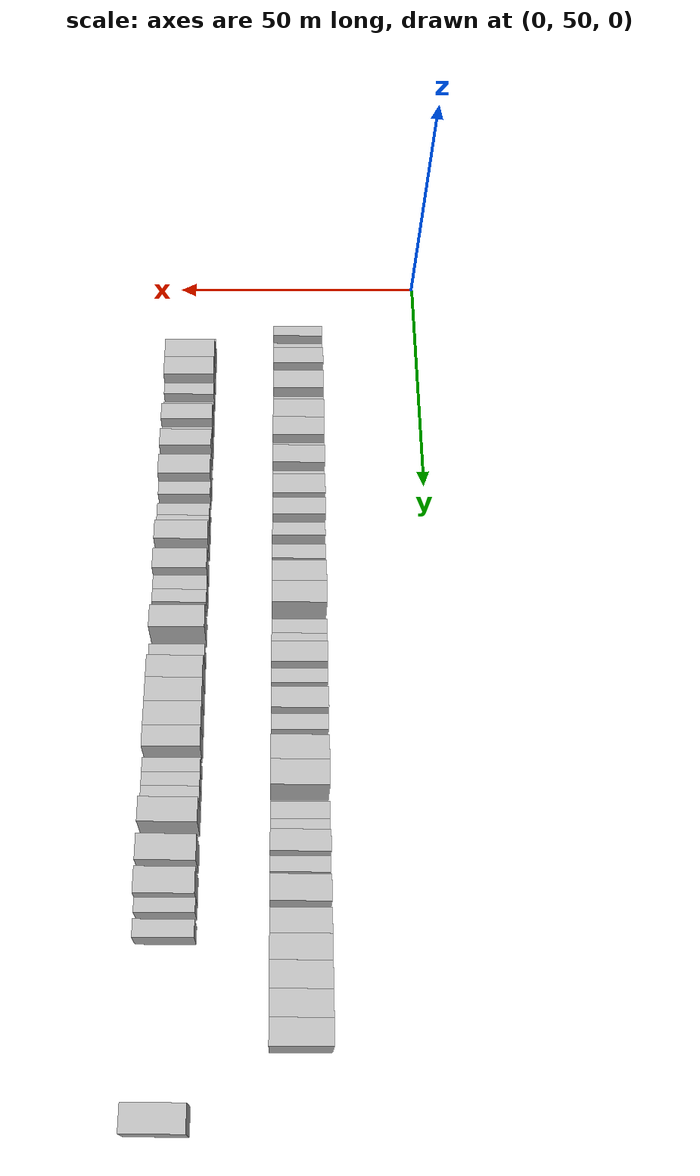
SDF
<sdf version="1.6">
 <world name="default">
  <model name="building_66">
   <static>1</static>
   <pose>25.0000 66.0421 0 0.000000 0.000000 0.000000</pose>
   <link name="link">
    <pose>0 0 3.00 0 0 0</pose>
    <collision name="collision"><geometry><box><size>10.0000 2.4468 6.0000</size></box></geometry></collision>
    <visual name="visual">
     <cast_shadows>0</cast_shadows>
     <geometry><box><size>10.0000 2.4468 6.0000</size></box></geometry>
     <material>
      <script>
       <uri>model://HANNAS_wall/materials/scripts</uri>
       <uri>model://HANNAS_wall/materials/textures</uri>
       <name>vrc/HANNAS_wall</name>
      </script>
     </material>
    </visual>
   </link>
  </model>
  <model name="building_67">
   <static>1</static>
   <pose>25.0000 70.4713 0 0.000000 0.000000 0.000000</pose>
   <link name="link">
    <pose>0 0 3.00 0 0 0</pose>
    <collision name="collision"><geometry><box><size>10.0000 2.4115 6.0000</size></box></geometry></collision>
    <visual name="visual">
     <cast_shadows>0</cast_shadows>
     <geometry><box><size>10.0000 2.4115 6.0000</size></box></geometry>
     <material>
      <script>
       <uri>model://HANNAS_wall/materials/scripts</uri>
       <uri>model://HANNAS_wall/materials/textures</uri>
       <name>vrc/HANNAS_wall</name>
      </script>
     </material>
    </visual>
   </link>
  </model>
  <model name="building_68">
   <static>1</static>
   <pose>25.0000 74.5765 0 0.000000 0.000000 0.000000</pose>
   <link name="link">
    <pose>0 0 4.50 0 0 0</pose>
    <collision name="collision"><geometry><box><size>10.0000 3.7988 9.0000</size></box></geometry></collision>
    <visual name="visual">
     <cast_shadows>0</cast_shadows>
     <geometry><box><size>10.0000 3.7988 9.0000</size></box></geometry>
     <material>
      <script>
       <uri>model://HANNAS_wall/materials/scripts</uri>
       <uri>model://HANNAS_wall/materials/textures</uri>
       <name>vrc/HANNAS_wall</name>
      </script>
     </material>
    </visual>
   </link>
  </model>
  <model name="building_69">
   <static>1</static>
   <pose>25.0000 80.6186 0 0.000000 0.000000 0.000000</pose>
   <link name="link">
    <pose>0 0 4.50 0 0 0</pose>
    <collision name="collision"><geometry><box><size>10.0000 4.2855 9.0000</size></box></geometry></collision>
    <visual name="visual">
     <cast_shadows>0</cast_shadows>
     <geometry><box><size>10.0000 4.2855 9.0000</size></box></geometry>
     <material>
      <script>
       <uri>model://HANNAS_wall/materials/scripts</uri>
       <uri>model://HANNAS_wall/materials/textures</uri>
       <name>vrc/HANNAS_wall</name>
      </script>
     </material>
    </visual>
   </link>
  </model>
  <model name="building_70">
   <static>1</static>
   <pose>25.0000 84.1155 0 0.000000 0.000000 0.000000</pose>
   <link name="link">
    <pose>0 0 3.00 0 0 0</pose>
    <collision name="collision"><geometry><box><size>10.0000 2.7082 6.0000</size></box></geometry></collision>
    <visual name="visual">
     <cast_shadows>0</cast_shadows>
     <geometry><box><size>10.0000 2.7082 6.0000</size></box></geometry>
     <material>
      <script>
       <uri>model://HANNAS_wall/materials/scripts</uri>
       <uri>model://HANNAS_wall/materials/textures</uri>
       <name>vrc/HANNAS_wall</name>
      </script>
     </material>
    </visual>
   </link>
  </model>
  <model name="building_71">
   <static>1</static>
   <pose>25.0000 87.6182 0 0.000000 0.000000 0.000000</pose>
   <link name="link">
    <pose>0 0 4.50 0 0 0</pose>
    <collision name="collision"><geometry><box><size>10.0000 4.2970 9.0000</size></box></geometry></collision>
    <visual name="visual">
     <cast_shadows>0</cast_shadows>
     <geometry><box><size>10.0000 4.2970 9.0000</size></box></geometry>
     <material>
      <script>
       <uri>model://HANNAS_wall/materials/scripts</uri>
       <uri>model://HANNAS_wall/materials/textures</uri>
       <name>vrc/HANNAS_wall</name>
      </script>
     </material>
    </visual>
   </link>
  </model>
  <model name="building_72">
   <static>1</static>
   <pose>25.0000 91.8586 0 0.000000 0.000000 0.000000</pose>
   <link name="link">
    <pose>0 0 4.50 0 0 0</pose>
    <collision name="collision"><geometry><box><size>10.0000 4.1838 9.0000</size></box></geometry></collision>
    <visual name="visual">
     <cast_shadows>0</cast_shadows>
     <geometry><box><size>10.0000 4.1838 9.0000</size></box></geometry>
     <material>
      <script>
       <uri>model://HANNAS_wall/materials/scripts</uri>
       <uri>model://HANNAS_wall/materials/textures</uri>
       <name>vrc/HANNAS_wall</name>
      </script>
     </material>
    </visual>
   </link>
  </model>
  <model name="building_73">
   <static>1</static>
   <pose>25.0000 95.1588 0 0.000000 0.000000 0.000000</pose>
   <link name="link">
    <pose>0 0 3.00 0 0 0</pose>
    <collision name="collision"><geometry><box><size>10.0000 2.4167 6.0000</size></box></geometry></collision>
    <visual name="visual">
     <cast_shadows>0</cast_shadows>
     <geometry><box><size>10.0000 2.4167 6.0000</size></box></geometry>
     <material>
      <script>
       <uri>model://HANNAS_wall/materials/scripts</uri>
       <uri>model://HANNAS_wall/materials/textures</uri>
       <name>vrc/HANNAS_wall</name>
      </script>
     </material>
    </visual>
   </link>
  </model>
  <model name="building_74">
   <static>1</static>
   <pose>25.0000 98.3634 0 0.000000 0.000000 0.000000</pose>
   <link name="link">
    <pose>0 0 4.50 0 0 0</pose>
    <collision name="collision"><geometry><box><size>10.0000 3.9925 9.0000</size></box></geometry></collision>
    <visual name="visual">
     <cast_shadows>0</cast_shadows>
     <geometry><box><size>10.0000 3.9925 9.0000</size></box></geometry>
     <material>
      <script>
       <uri>model://HANNAS_wall/materials/scripts</uri>
       <uri>model://HANNAS_wall/materials/textures</uri>
       <name>vrc/HANNAS_wall</name>
      </script>
     </material>
    </visual>
   </link>
  </model>
  <model name="building_75">
   <static>1</static>
   <pose>25.0000 101.7082 0 0.000000 0.000000 0.000000</pose>
   <link name="link">
    <pose>0 0 3.00 0 0 0</pose>
    <collision name="collision"><geometry><box><size>10.0000 2.6971 6.0000</size></box></geometry></collision>
    <visual name="visual">
     <cast_shadows>0</cast_shadows>
     <geometry><box><size>10.0000 2.6971 6.0000</size></box></geometry>
     <material>
      <script>
       <uri>model://HANNAS_wall/materials/scripts</uri>
       <uri>model://HANNAS_wall/materials/textures</uri>
       <name>vrc/HANNAS_wall</name>
      </script>
     </material>
    </visual>
   </link>
  </model>
  <model name="building_76">
   <static>1</static>
   <pose>25.0000 105.1471 0 0.000000 0.000000 0.000000</pose>
   <link name="link">
    <pose>0 0 4.50 0 0 0</pose>
    <collision name="collision"><geometry><box><size>10.0000 4.1807 9.0000</size></box></geometry></collision>
    <visual name="visual">
     <cast_shadows>0</cast_shadows>
     <geometry><box><size>10.0000 4.1807 9.0000</size></box></geometry>
     <material>
      <script>
       <uri>model://HANNAS_wall/materials/scripts</uri>
       <uri>model://HANNAS_wall/materials/textures</uri>
       <name>vrc/HANNAS_wall</name>
      </script>
     </material>
    </visual>
   </link>
  </model>
  <model name="building_77">
   <static>1</static>
   <pose>25.0000 110.0863 0 0.000000 0.000000 0.000000</pose>
   <link name="link">
    <pose>0 0 4.50 0 0 0</pose>
    <collision name="collision"><geometry><box><size>10.0000 3.6975 9.0000</size></box></geometry></collision>
    <visual name="visual">
     <cast_shadows>0</cast_shadows>
     <geometry><box><size>10.0000 3.6975 9.0000</size></box></geometry>
     <material>
      <script>
       <uri>model://HANNAS_wall/materials/scripts</uri>
       <uri>model://HANNAS_wall/materials/textures</uri>
       <name>vrc/HANNAS_wall</name>
      </script>
     </material>
    </visual>
   </link>
  </model>
  <model name="building_78">
   <static>1</static>
   <pose>25.0000 113.3490 0 0.000000 0.000000 0.000000</pose>
   <link name="link">
    <pose>0 0 3.00 0 0 0</pose>
    <collision name="collision"><geometry><box><size>10.0000 2.8279 6.0000</size></box></geometry></collision>
    <visual name="visual">
     <cast_shadows>0</cast_shadows>
     <geometry><box><size>10.0000 2.8279 6.0000</size></box></geometry>
     <material>
      <script>
       <uri>model://HANNAS_wall/materials/scripts</uri>
       <uri>model://HANNAS_wall/materials/textures</uri>
       <name>vrc/HANNAS_wall</name>
      </script>
     </material>
    </visual>
   </link>
  </model>
  <model name="building_79">
   <static>1</static>
   <pose>25.0000 118.2401 0 0.000000 0.000000 0.000000</pose>
   <link name="link">
    <pose>0 0 3.00 0 0 0</pose>
    <collision name="collision"><geometry><box><size>10.0000 2.9542 6.0000</size></box></geometry></collision>
    <visual name="visual">
     <cast_shadows>0</cast_shadows>
     <geometry><box><size>10.0000 2.9542 6.0000</size></box></geometry>
     <material>
      <script>
       <uri>model://HANNAS_wall/materials/scripts</uri>
       <uri>model://HANNAS_wall/materials/textures</uri>
       <name>vrc/HANNAS_wall</name>
      </script>
     </material>
    </visual>
   </link>
  </model>
  <model name="building_80">
   <static>1</static>
   <pose>25.0000 123.8369 0 0.000000 0.000000 0.000000</pose>
   <link name="link">
    <pose>0 0 4.50 0 0 0</pose>
    <collision name="collision"><geometry><box><size>10.0000 4.2394 9.0000</size></box></geometry></collision>
    <visual name="visual">
     <cast_shadows>0</cast_shadows>
     <geometry><box><size>10.0000 4.2394 9.0000</size></box></geometry>
     <material>
      <script>
       <uri>model://HANNAS_wall/materials/scripts</uri>
       <uri>model://HANNAS_wall/materials/textures</uri>
       <name>vrc/HANNAS_wall</name>
      </script>
     </material>
    </visual>
   </link>
  </model>
  <model name="building_81">
   <static>1</static>
   <pose>25.0000 128.1379 0 0.000000 0.000000 0.000000</pose>
   <link name="link">
    <pose>0 0 4.50 0 0 0</pose>
    <collision name="collision"><geometry><box><size>10.0000 4.3627 9.0000</size></box></geometry></collision>
    <visual name="visual">
     <cast_shadows>0</cast_shadows>
     <geometry><box><size>10.0000 4.3627 9.0000</size></box></geometry>
     <material>
      <script>
       <uri>model://HANNAS_wall/materials/scripts</uri>
       <uri>model://HANNAS_wall/materials/textures</uri>
       <name>vrc/HANNAS_wall</name>
      </script>
     </material>
    </visual>
   </link>
  </model>
  <model name="building_82">
   <static>1</static>
   <pose>25.0000 133.6990 0 0.000000 0.000000 0.000000</pose>
   <link name="link">
    <pose>0 0 3.00 0 0 0</pose>
    <collision name="collision"><geometry><box><size>10.0000 2.7595 6.0000</size></box></geometry></collision>
    <visual name="visual">
     <cast_shadows>0</cast_shadows>
     <geometry><box><size>10.0000 2.7595 6.0000</size></box></geometry>
     <material>
      <script>
       <uri>model://HANNAS_wall/materials/scripts</uri>
       <uri>model://HANNAS_wall/materials/textures</uri>
       <name>vrc/HANNAS_wall</name>
      </script>
     </material>
    </visual>
   </link>
  </model>
  <model name="building_83">
   <static>1</static>
   <pose>25.0000 136.5353 0 0.000000 0.000000 0.000000</pose>
   <link name="link">
    <pose>0 0 3.00 0 0 0</pose>
    <collision name="collision"><geometry><box><size>10.0000 2.9131 6.0000</size></box></geometry></collision>
    <visual name="visual">
     <cast_shadows>0</cast_shadows>
     <geometry><box><size>10.0000 2.9131 6.0000</size></box></geometry>
     <material>
      <script>
       <uri>model://HANNAS_wall/materials/scripts</uri>
       <uri>model://HANNAS_wall/materials/textures</uri>
       <name>vrc/HANNAS_wall</name>
      </script>
     </material>
    </visual>
   </link>
  </model>
  <model name="building_84">
   <static>1</static>
   <pose>25.0000 139.9664 0 0.000000 0.000000 0.000000</pose>
   <link name="link">
    <pose>0 0 4.50 0 0 0</pose>
    <collision name="collision"><geometry><box><size>10.0000 3.9490 9.0000</size></box></geometry></collision>
    <visual name="visual">
     <cast_shadows>0</cast_shadows>
     <geometry><box><size>10.0000 3.9490 9.0000</size></box></geometry>
     <material>
      <script>
       <uri>model://HANNAS_wall/materials/scripts</uri>
       <uri>model://HANNAS_wall/materials/textures</uri>
       <name>vrc/HANNAS_wall</name>
      </script>
     </material>
    </visual>
   </link>
  </model>
  <model name="building_85">
   <static>1</static>
   <pose>25.0000 143.3175 0 0.000000 0.000000 0.000000</pose>
   <link name="link">
    <pose>0 0 3.00 0 0 0</pose>
    <collision name="collision"><geometry><box><size>10.0000 2.7533 6.0000</size></box></geometry></collision>
    <visual name="visual">
     <cast_shadows>0</cast_shadows>
     <geometry><box><size>10.0000 2.7533 6.0000</size></box></geometry>
     <material>
      <script>
       <uri>model://HANNAS_wall/materials/scripts</uri>
       <uri>model://HANNAS_wall/materials/textures</uri>
       <name>vrc/HANNAS_wall</name>
      </script>
     </material>
    </visual>
   </link>
  </model>
  <model name="building_86">
   <static>1</static>
   <pose>25.0000 148.6133 0 0.000000 0.000000 0.000000</pose>
   <link name="link">
    <pose>0 0 4.50 0 0 0</pose>
    <collision name="collision"><geometry><box><size>10.0000 3.8383 9.0000</size></box></geometry></collision>
    <visual name="visual">
     <cast_shadows>0</cast_shadows>
     <geometry><box><size>10.0000 3.8383 9.0000</size></box></geometry>
     <material>
      <script>
       <uri>model://HANNAS_wall/materials/scripts</uri>
       <uri>model://HANNAS_wall/materials/textures</uri>
       <name>vrc/HANNAS_wall</name>
      </script>
     </material>
    </visual>
   </link>
  </model>
  <model name="building_87">
   <static>1</static>
   <pose>25.0000 151.9871 0 0.000000 0.000000 0.000000</pose>
   <link name="link">
    <pose>0 0 3.00 0 0 0</pose>
    <collision name="collision"><geometry><box><size>10.0000 2.9091 6.0000</size></box></geometry></collision>
    <visual name="visual">
     <cast_shadows>0</cast_shadows>
     <geometry><box><size>10.0000 2.9091 6.0000</size></box></geometry>
     <material>
      <script>
       <uri>model://HANNAS_wall/materials/scripts</uri>
       <uri>model://HANNAS_wall/materials/textures</uri>
       <name>vrc/HANNAS_wall</name>
      </script>
     </material>
    </visual>
   </link>
  </model>
  <model name="building_88">
   <static>1</static>
   <pose>25.0000 157.6048 0 0.000000 0.000000 0.000000</pose>
   <link name="link">
    <pose>0 0 4.50 0 0 0</pose>
    <collision name="collision"><geometry><box><size>10.0000 4.3264 9.0000</size></box></geometry></collision>
    <visual name="visual">
     <cast_shadows>0</cast_shadows>
     <geometry><box><size>10.0000 4.3264 9.0000</size></box></geometry>
     <material>
      <script>
       <uri>model://HANNAS_wall/materials/scripts</uri>
       <uri>model://HANNAS_wall/materials/textures</uri>
       <name>vrc/HANNAS_wall</name>
      </script>
     </material>
    </visual>
   </link>
  </model>
  <model name="building_89">
   <static>1</static>
   <pose>25.0000 162.0022 0 0.000000 0.000000 0.000000</pose>
   <link name="link">
    <pose>0 0 4.50 0 0 0</pose>
    <collision name="collision"><geometry><box><size>10.0000 4.4683 9.0000</size></box></geometry></collision>
    <visual name="visual">
     <cast_shadows>0</cast_shadows>
     <geometry><box><size>10.0000 4.4683 9.0000</size></box></geometry>
     <material>
      <script>
       <uri>model://HANNAS_wall/materials/scripts</uri>
       <uri>model://HANNAS_wall/materials/textures</uri>
       <name>vrc/HANNAS_wall</name>
      </script>
     </material>
    </visual>
   </link>
  </model>
  <model name="building_90">
   <static>1</static>
   <pose>25.0000 167.7228 0 0.000000 0.000000 0.000000</pose>
   <link name="link">
    <pose>0 0 3.00 0 0 0</pose>
    <collision name="collision"><geometry><box><size>10.0000 2.9728 6.0000</size></box></geometry></collision>
    <visual name="visual">
     <cast_shadows>0</cast_shadows>
     <geometry><box><size>10.0000 2.9728 6.0000</size></box></geometry>
     <material>
      <script>
       <uri>model://HANNAS_wall/materials/scripts</uri>
       <uri>model://HANNAS_wall/materials/textures</uri>
       <name>vrc/HANNAS_wall</name>
      </script>
     </material>
    </visual>
   </link>
  </model>
  <model name="building_91">
   <static>1</static>
   <pose>25.0000 170.4842 0 0.000000 0.000000 0.000000</pose>
   <link name="link">
    <pose>0 0 3.00 0 0 0</pose>
    <collision name="collision"><geometry><box><size>10.0000 2.5502 6.0000</size></box></geometry></collision>
    <visual name="visual">
     <cast_shadows>0</cast_shadows>
     <geometry><box><size>10.0000 2.5502 6.0000</size></box></geometry>
     <material>
      <script>
       <uri>model://HANNAS_wall/materials/scripts</uri>
       <uri>model://HANNAS_wall/materials/textures</uri>
       <name>vrc/HANNAS_wall</name>
      </script>
     </material>
    </visual>
   </link>
  </model>
  <model name="building_92">
   <static>1</static>
   <pose>25.0000 173.5657 0 0.000000 0.000000 0.000000</pose>
   <link name="link">
    <pose>0 0 4.50 0 0 0</pose>
    <collision name="collision"><geometry><box><size>10.0000 3.6128 9.0000</size></box></geometry></collision>
    <visual name="visual">
     <cast_shadows>0</cast_shadows>
     <geometry><box><size>10.0000 3.6128 9.0000</size></box></geometry>
     <material>
      <script>
       <uri>model://HANNAS_wall/materials/scripts</uri>
       <uri>model://HANNAS_wall/materials/textures</uri>
       <name>vrc/HANNAS_wall</name>
      </script>
     </material>
    </visual>
   </link>
  </model>
  <model name="building_93">
   <static>1</static>
   <pose>25.0000 176.7097 0 0.000000 0.000000 0.000000</pose>
   <link name="link">
    <pose>0 0 3.00 0 0 0</pose>
    <collision name="collision"><geometry><box><size>10.0000 2.6752 6.0000</size></box></geometry></collision>
    <visual name="visual">
     <cast_shadows>0</cast_shadows>
     <geometry><box><size>10.0000 2.6752 6.0000</size></box></geometry>
     <material>
      <script>
       <uri>model://HANNAS_wall/materials/scripts</uri>
       <uri>model://HANNAS_wall/materials/textures</uri>
       <name>vrc/HANNAS_wall</name>
      </script>
     </material>
    </visual>
   </link>
  </model>
  <model name="building_94">
   <static>1</static>
   <pose>25.0000 181.1969 0 0.000000 0.000000 0.000000</pose>
   <link name="link">
    <pose>0 0 4.50 0 0 0</pose>
    <collision name="collision"><geometry><box><size>10.0000 4.2992 9.0000</size></box></geometry></collision>
    <visual name="visual">
     <cast_shadows>0</cast_shadows>
     <geometry><box><size>10.0000 4.2992 9.0000</size></box></geometry>
     <material>
      <script>
       <uri>model://HANNAS_wall/materials/scripts</uri>
       <uri>model://HANNAS_wall/materials/textures</uri>
       <name>vrc/HANNAS_wall</name>
      </script>
     </material>
    </visual>
   </link>
  </model>
  <model name="building_95">
   <static>1</static>
   <pose>25.0000 186.3532 0 0.000000 0.000000 0.000000</pose>
   <link name="link">
    <pose>0 0 4.50 0 0 0</pose>
    <collision name="collision"><geometry><box><size>10.0000 4.0134 9.0000</size></box></geometry></collision>
    <visual name="visual">
     <cast_shadows>0</cast_shadows>
     <geometry><box><size>10.0000 4.0134 9.0000</size></box></geometry>
     <material>
      <script>
       <uri>model://HANNAS_wall/materials/scripts</uri>
       <uri>model://HANNAS_wall/materials/textures</uri>
       <name>vrc/HANNAS_wall</name>
      </script>
     </material>
    </visual>
   </link>
  </model>
  <model name="building_96">
   <static>1</static>
   <pose>25.0000 190.3770 0 0.000000 0.000000 0.000000</pose>
   <link name="link">
    <pose>0 0 4.50 0 0 0</pose>
    <collision name="collision"><geometry><box><size>10.0000 4.0343 9.0000</size></box></geometry></collision>
    <visual name="visual">
     <cast_shadows>0</cast_shadows>
     <geometry><box><size>10.0000 4.0343 9.0000</size></box></geometry>
     <material>
      <script>
       <uri>model://HANNAS_wall/materials/scripts</uri>
       <uri>model://HANNAS_wall/materials/textures</uri>
       <name>vrc/HANNAS_wall</name>
      </script>
     </material>
    </visual>
   </link>
  </model>
  <model name="building_97">
   <static>1</static>
   <pose>25.0000 194.5191 0 0.000000 0.000000 0.000000</pose>
   <link name="link">
    <pose>0 0 4.50 0 0 0</pose>
    <collision name="collision"><geometry><box><size>10.0000 4.2497 9.0000</size></box></geometry></collision>
    <visual name="visual">
     <cast_shadows>0</cast_shadows>
     <geometry><box><size>10.0000 4.2497 9.0000</size></box></geometry>
     <material>
      <script>
       <uri>model://HANNAS_wall/materials/scripts</uri>
       <uri>model://HANNAS_wall/materials/textures</uri>
       <name>vrc/HANNAS_wall</name>
      </script>
     </material>
    </visual>
   </link>
  </model>
  <model name="building_98">
   <static>1</static>
   <pose>25.0000 198.7316 0 0.000000 0.000000 0.000000</pose>
   <link name="link">
    <pose>0 0 4.50 0 0 0</pose>
    <collision name="collision"><geometry><box><size>10.0000 4.1753 9.0000</size></box></geometry></collision>
    <visual name="visual">
     <cast_shadows>0</cast_shadows>
     <geometry><box><size>10.0000 4.1753 9.0000</size></box></geometry>
     <material>
      <script>
       <uri>model://HANNAS_wall/materials/scripts</uri>
       <uri>model://HANNAS_wall/materials/textures</uri>
       <name>vrc/HANNAS_wall</name>
      </script>
     </material>
    </visual>
   </link>
  </model>
  <model name="building_99">
   <static>1</static>
   <pose>25.0000 202.8824 0 0.000000 0.000000 0.000000</pose>
   <link name="link">
    <pose>0 0 4.50 0 0 0</pose>
    <collision name="collision"><geometry><box><size>10.0000 4.1264 9.0000</size></box></geometry></collision>
    <visual name="visual">
     <cast_shadows>0</cast_shadows>
     <geometry><box><size>10.0000 4.1264 9.0000</size></box></geometry>
     <material>
      <script>
       <uri>model://HANNAS_wall/materials/scripts</uri>
       <uri>model://HANNAS_wall/materials/textures</uri>
       <name>vrc/HANNAS_wall</name>
      </script>
     </material>
    </visual>
   </link>
  </model>
  <model name="building_163">
   <static>1</static>
   <pose>47.0000 69.4883 0 0.000000 0.000000 0.000000</pose>
   <link name="link">
    <pose>0 0 3.00 0 0 0</pose>
    <collision name="collision"><geometry><box><size>10.0000 2.5404 6.0000</size></box></geometry></collision>
    <visual name="visual">
     <cast_shadows>0</cast_shadows>
     <geometry><box><size>10.0000 2.5404 6.0000</size></box></geometry>
     <material>
      <script>
       <uri>model://HANNAS_wall/materials/scripts</uri>
       <uri>model://HANNAS_wall/materials/textures</uri>
       <name>vrc/HANNAS_wall</name>
      </script>
     </material>
    </visual>
   </link>
  </model>
  <model name="building_164">
   <static>1</static>
   <pose>47.0000 72.9483 0 0.000000 0.000000 0.000000</pose>
   <link name="link">
    <pose>0 0 4.50 0 0 0</pose>
    <collision name="collision"><geometry><box><size>10.0000 4.3797 9.0000</size></box></geometry></collision>
    <visual name="visual">
     <cast_shadows>0</cast_shadows>
     <geometry><box><size>10.0000 4.3797 9.0000</size></box></geometry>
     <material>
      <script>
       <uri>model://HANNAS_wall/materials/scripts</uri>
       <uri>model://HANNAS_wall/materials/textures</uri>
       <name>vrc/HANNAS_wall</name>
      </script>
     </material>
    </visual>
   </link>
  </model>
  <model name="building_165">
   <static>1</static>
   <pose>47.0000 77.3129 0 0.000000 0.000000 0.000000</pose>
   <link name="link">
    <pose>0 0 4.50 0 0 0</pose>
    <collision name="collision"><geometry><box><size>10.0000 4.3494 9.0000</size></box></geometry></collision>
    <visual name="visual">
     <cast_shadows>0</cast_shadows>
     <geometry><box><size>10.0000 4.3494 9.0000</size></box></geometry>
     <material>
      <script>
       <uri>model://HANNAS_wall/materials/scripts</uri>
       <uri>model://HANNAS_wall/materials/textures</uri>
       <name>vrc/HANNAS_wall</name>
      </script>
     </material>
    </visual>
   </link>
  </model>
  <model name="building_166">
   <static>1</static>
   <pose>47.0000 80.8525 0 0.000000 0.000000 0.000000</pose>
   <link name="link">
    <pose>0 0 3.00 0 0 0</pose>
    <collision name="collision"><geometry><box><size>10.0000 2.7299 6.0000</size></box></geometry></collision>
    <visual name="visual">
     <cast_shadows>0</cast_shadows>
     <geometry><box><size>10.0000 2.7299 6.0000</size></box></geometry>
     <material>
      <script>
       <uri>model://HANNAS_wall/materials/scripts</uri>
       <uri>model://HANNAS_wall/materials/textures</uri>
       <name>vrc/HANNAS_wall</name>
      </script>
     </material>
    </visual>
   </link>
  </model>
  <model name="building_167">
   <static>1</static>
   <pose>47.0000 85.4453 0 0.000000 0.000000 0.000000</pose>
   <link name="link">
    <pose>0 0 3.00 0 0 0</pose>
    <collision name="collision"><geometry><box><size>10.0000 2.4556 6.0000</size></box></geometry></collision>
    <visual name="visual">
     <cast_shadows>0</cast_shadows>
     <geometry><box><size>10.0000 2.4556 6.0000</size></box></geometry>
     <material>
      <script>
       <uri>model://HANNAS_wall/materials/scripts</uri>
       <uri>model://HANNAS_wall/materials/textures</uri>
       <name>vrc/HANNAS_wall</name>
      </script>
     </material>
    </visual>
   </link>
  </model>
  <model name="building_168">
   <static>1</static>
   <pose>47.0000 88.4790 0 0.000000 0.000000 0.000000</pose>
   <link name="link">
    <pose>0 0 4.50 0 0 0</pose>
    <collision name="collision"><geometry><box><size>10.0000 3.6119 9.0000</size></box></geometry></collision>
    <visual name="visual">
     <cast_shadows>0</cast_shadows>
     <geometry><box><size>10.0000 3.6119 9.0000</size></box></geometry>
     <material>
      <script>
       <uri>model://HANNAS_wall/materials/scripts</uri>
       <uri>model://HANNAS_wall/materials/textures</uri>
       <name>vrc/HANNAS_wall</name>
      </script>
     </material>
    </visual>
   </link>
  </model>
  <model name="building_169">
   <static>1</static>
   <pose>47.0000 91.5321 0 0.000000 0.000000 0.000000</pose>
   <link name="link">
    <pose>0 0 3.00 0 0 0</pose>
    <collision name="collision"><geometry><box><size>10.0000 2.4942 6.0000</size></box></geometry></collision>
    <visual name="visual">
     <cast_shadows>0</cast_shadows>
     <geometry><box><size>10.0000 2.4942 6.0000</size></box></geometry>
     <material>
      <script>
       <uri>model://HANNAS_wall/materials/scripts</uri>
       <uri>model://HANNAS_wall/materials/textures</uri>
       <name>vrc/HANNAS_wall</name>
      </script>
     </material>
    </visual>
   </link>
  </model>
  <model name="building_170">
   <static>1</static>
   <pose>47.0000 94.6914 0 0.000000 0.000000 0.000000</pose>
   <link name="link">
    <pose>0 0 4.50 0 0 0</pose>
    <collision name="collision"><geometry><box><size>10.0000 3.8244 9.0000</size></box></geometry></collision>
    <visual name="visual">
     <cast_shadows>0</cast_shadows>
     <geometry><box><size>10.0000 3.8244 9.0000</size></box></geometry>
     <material>
      <script>
       <uri>model://HANNAS_wall/materials/scripts</uri>
       <uri>model://HANNAS_wall/materials/textures</uri>
       <name>vrc/HANNAS_wall</name>
      </script>
     </material>
    </visual>
   </link>
  </model>
  <model name="building_171">
   <static>1</static>
   <pose>47.0000 100.7998 0 0.000000 0.000000 0.000000</pose>
   <link name="link">
    <pose>0 0 4.50 0 0 0</pose>
    <collision name="collision"><geometry><box><size>10.0000 4.3924 9.0000</size></box></geometry></collision>
    <visual name="visual">
     <cast_shadows>0</cast_shadows>
     <geometry><box><size>10.0000 4.3924 9.0000</size></box></geometry>
     <material>
      <script>
       <uri>model://HANNAS_wall/materials/scripts</uri>
       <uri>model://HANNAS_wall/materials/textures</uri>
       <name>vrc/HANNAS_wall</name>
      </script>
     </material>
    </visual>
   </link>
  </model>
  <model name="building_172">
   <static>1</static>
   <pose>47.0000 104.4455 0 0.000000 0.000000 0.000000</pose>
   <link name="link">
    <pose>0 0 3.00 0 0 0</pose>
    <collision name="collision"><geometry><box><size>10.0000 2.8991 6.0000</size></box></geometry></collision>
    <visual name="visual">
     <cast_shadows>0</cast_shadows>
     <geometry><box><size>10.0000 2.8991 6.0000</size></box></geometry>
     <material>
      <script>
       <uri>model://HANNAS_wall/materials/scripts</uri>
       <uri>model://HANNAS_wall/materials/textures</uri>
       <name>vrc/HANNAS_wall</name>
      </script>
     </material>
    </visual>
   </link>
  </model>
  <model name="building_173">
   <static>1</static>
   <pose>47.0000 109.1971 0 0.000000 0.000000 0.000000</pose>
   <link name="link">
    <pose>0 0 3.00 0 0 0</pose>
    <collision name="collision"><geometry><box><size>10.0000 2.6039 6.0000</size></box></geometry></collision>
    <visual name="visual">
     <cast_shadows>0</cast_shadows>
     <geometry><box><size>10.0000 2.6039 6.0000</size></box></geometry>
     <material>
      <script>
       <uri>model://HANNAS_wall/materials/scripts</uri>
       <uri>model://HANNAS_wall/materials/textures</uri>
       <name>vrc/HANNAS_wall</name>
      </script>
     </material>
    </visual>
   </link>
  </model>
  <model name="building_174">
   <static>1</static>
   <pose>47.0000 111.9450 0 0.000000 0.000000 0.000000</pose>
   <link name="link">
    <pose>0 0 3.00 0 0 0</pose>
    <collision name="collision"><geometry><box><size>10.0000 2.8920 6.0000</size></box></geometry></collision>
    <visual name="visual">
     <cast_shadows>0</cast_shadows>
     <geometry><box><size>10.0000 2.8920 6.0000</size></box></geometry>
     <material>
      <script>
       <uri>model://HANNAS_wall/materials/scripts</uri>
       <uri>model://HANNAS_wall/materials/textures</uri>
       <name>vrc/HANNAS_wall</name>
      </script>
     </material>
    </visual>
   </link>
  </model>
  <model name="building_175">
   <static>1</static>
   <pose>47.0000 115.3542 0 0.000000 0.000000 0.000000</pose>
   <link name="link">
    <pose>0 0 4.50 0 0 0</pose>
    <collision name="collision"><geometry><box><size>10.0000 3.9264 9.0000</size></box></geometry></collision>
    <visual name="visual">
     <cast_shadows>0</cast_shadows>
     <geometry><box><size>10.0000 3.9264 9.0000</size></box></geometry>
     <material>
      <script>
       <uri>model://HANNAS_wall/materials/scripts</uri>
       <uri>model://HANNAS_wall/materials/textures</uri>
       <name>vrc/HANNAS_wall</name>
      </script>
     </material>
    </visual>
   </link>
  </model>
  <model name="building_176">
   <static>1</static>
   <pose>47.0000 121.3536 0 0.000000 0.000000 0.000000</pose>
   <link name="link">
    <pose>0 0 4.50 0 0 0</pose>
    <collision name="collision"><geometry><box><size>10.0000 4.0724 9.0000</size></box></geometry></collision>
    <visual name="visual">
     <cast_shadows>0</cast_shadows>
     <geometry><box><size>10.0000 4.0724 9.0000</size></box></geometry>
     <material>
      <script>
       <uri>model://HANNAS_wall/materials/scripts</uri>
       <uri>model://HANNAS_wall/materials/textures</uri>
       <name>vrc/HANNAS_wall</name>
      </script>
     </material>
    </visual>
   </link>
  </model>
  <model name="building_177">
   <static>1</static>
   <pose>47.0000 124.8548 0 0.000000 0.000000 0.000000</pose>
   <link name="link">
    <pose>0 0 3.00 0 0 0</pose>
    <collision name="collision"><geometry><box><size>10.0000 2.9300 6.0000</size></box></geometry></collision>
    <visual name="visual">
     <cast_shadows>0</cast_shadows>
     <geometry><box><size>10.0000 2.9300 6.0000</size></box></geometry>
     <material>
      <script>
       <uri>model://HANNAS_wall/materials/scripts</uri>
       <uri>model://HANNAS_wall/materials/textures</uri>
       <name>vrc/HANNAS_wall</name>
      </script>
     </material>
    </visual>
   </link>
  </model>
  <model name="building_178">
   <static>1</static>
   <pose>47.0000 127.6398 0 0.000000 0.000000 0.000000</pose>
   <link name="link">
    <pose>0 0 3.00 0 0 0</pose>
    <collision name="collision"><geometry><box><size>10.0000 2.6400 6.0000</size></box></geometry></collision>
    <visual name="visual">
     <cast_shadows>0</cast_shadows>
     <geometry><box><size>10.0000 2.6400 6.0000</size></box></geometry>
     <material>
      <script>
       <uri>model://HANNAS_wall/materials/scripts</uri>
       <uri>model://HANNAS_wall/materials/textures</uri>
       <name>vrc/HANNAS_wall</name>
      </script>
     </material>
    </visual>
   </link>
  </model>
  <model name="building_179">
   <static>1</static>
   <pose>47.0000 133.1517 0 0.000000 0.000000 0.000000</pose>
   <link name="link">
    <pose>0 0 4.50 0 0 0</pose>
    <collision name="collision"><geometry><box><size>10.0000 4.3838 9.0000</size></box></geometry></collision>
    <visual name="visual">
     <cast_shadows>0</cast_shadows>
     <geometry><box><size>10.0000 4.3838 9.0000</size></box></geometry>
     <material>
      <script>
       <uri>model://HANNAS_wall/materials/scripts</uri>
       <uri>model://HANNAS_wall/materials/textures</uri>
       <name>vrc/HANNAS_wall</name>
      </script>
     </material>
    </visual>
   </link>
  </model>
  <model name="building_180">
   <static>1</static>
   <pose>47.0000 138.5966 0 0.000000 0.000000 0.000000</pose>
   <link name="link">
    <pose>0 0 3.00 0 0 0</pose>
    <collision name="collision"><geometry><box><size>10.0000 2.5059 6.0000</size></box></geometry></collision>
    <visual name="visual">
     <cast_shadows>0</cast_shadows>
     <geometry><box><size>10.0000 2.5059 6.0000</size></box></geometry>
     <material>
      <script>
       <uri>model://HANNAS_wall/materials/scripts</uri>
       <uri>model://HANNAS_wall/materials/textures</uri>
       <name>vrc/HANNAS_wall</name>
      </script>
     </material>
    </visual>
   </link>
  </model>
  <model name="building_181">
   <static>1</static>
   <pose>47.0000 142.9368 0 0.000000 0.000000 0.000000</pose>
   <link name="link">
    <pose>0 0 4.50 0 0 0</pose>
    <collision name="collision"><geometry><box><size>10.0000 4.1746 9.0000</size></box></geometry></collision>
    <visual name="visual">
     <cast_shadows>0</cast_shadows>
     <geometry><box><size>10.0000 4.1746 9.0000</size></box></geometry>
     <material>
      <script>
       <uri>model://HANNAS_wall/materials/scripts</uri>
       <uri>model://HANNAS_wall/materials/textures</uri>
       <name>vrc/HANNAS_wall</name>
      </script>
     </material>
    </visual>
   </link>
  </model>
  <model name="building_182">
   <static>1</static>
   <pose>47.0000 147.2525 0 0.000000 0.000000 0.000000</pose>
   <link name="link">
    <pose>0 0 4.50 0 0 0</pose>
    <collision name="collision"><geometry><box><size>10.0000 4.4567 9.0000</size></box></geometry></collision>
    <visual name="visual">
     <cast_shadows>0</cast_shadows>
     <geometry><box><size>10.0000 4.4567 9.0000</size></box></geometry>
     <material>
      <script>
       <uri>model://HANNAS_wall/materials/scripts</uri>
       <uri>model://HANNAS_wall/materials/textures</uri>
       <name>vrc/HANNAS_wall</name>
      </script>
     </material>
    </visual>
   </link>
  </model>
  <model name="building_183">
   <static>1</static>
   <pose>47.0000 151.6745 0 0.000000 0.000000 0.000000</pose>
   <link name="link">
    <pose>0 0 4.50 0 0 0</pose>
    <collision name="collision"><geometry><box><size>10.0000 4.3875 9.0000</size></box></geometry></collision>
    <visual name="visual">
     <cast_shadows>0</cast_shadows>
     <geometry><box><size>10.0000 4.3875 9.0000</size></box></geometry>
     <material>
      <script>
       <uri>model://HANNAS_wall/materials/scripts</uri>
       <uri>model://HANNAS_wall/materials/textures</uri>
       <name>vrc/HANNAS_wall</name>
      </script>
     </material>
    </visual>
   </link>
  </model>
  <model name="building_184">
   <static>1</static>
   <pose>47.0000 155.7599 0 0.000000 0.000000 0.000000</pose>
   <link name="link">
    <pose>0 0 4.50 0 0 0</pose>
    <collision name="collision"><geometry><box><size>10.0000 3.7833 9.0000</size></box></geometry></collision>
    <visual name="visual">
     <cast_shadows>0</cast_shadows>
     <geometry><box><size>10.0000 3.7833 9.0000</size></box></geometry>
     <material>
      <script>
       <uri>model://HANNAS_wall/materials/scripts</uri>
       <uri>model://HANNAS_wall/materials/textures</uri>
       <name>vrc/HANNAS_wall</name>
      </script>
     </material>
    </visual>
   </link>
  </model>
  <model name="building_185">
   <static>1</static>
   <pose>47.0000 159.9111 0 0.000000 0.000000 0.000000</pose>
   <link name="link">
    <pose>0 0 3.00 0 0 0</pose>
    <collision name="collision"><geometry><box><size>10.0000 2.5191 6.0000</size></box></geometry></collision>
    <visual name="visual">
     <cast_shadows>0</cast_shadows>
     <geometry><box><size>10.0000 2.5191 6.0000</size></box></geometry>
     <material>
      <script>
       <uri>model://HANNAS_wall/materials/scripts</uri>
       <uri>model://HANNAS_wall/materials/textures</uri>
       <name>vrc/HANNAS_wall</name>
      </script>
     </material>
    </visual>
   </link>
  </model>
  <model name="building_186">
   <static>1</static>
   <pose>47.0000 162.3991 0 0.000000 0.000000 0.000000</pose>
   <link name="link">
    <pose>0 0 3.00 0 0 0</pose>
    <collision name="collision"><geometry><box><size>10.0000 2.4569 6.0000</size></box></geometry></collision>
    <visual name="visual">
     <cast_shadows>0</cast_shadows>
     <geometry><box><size>10.0000 2.4569 6.0000</size></box></geometry>
     <material>
      <script>
       <uri>model://HANNAS_wall/materials/scripts</uri>
       <uri>model://HANNAS_wall/materials/textures</uri>
       <name>vrc/HANNAS_wall</name>
      </script>
     </material>
    </visual>
   </link>
  </model>
  <model name="building_187">
   <static>1</static>
   <pose>47.0000 165.0299 0 0.000000 0.000000 0.000000</pose>
   <link name="link">
    <pose>0 0 3.00 0 0 0</pose>
    <collision name="collision"><geometry><box><size>10.0000 2.8046 6.0000</size></box></geometry></collision>
    <visual name="visual">
     <cast_shadows>0</cast_shadows>
     <geometry><box><size>10.0000 2.8046 6.0000</size></box></geometry>
     <material>
      <script>
       <uri>model://HANNAS_wall/materials/scripts</uri>
       <uri>model://HANNAS_wall/materials/textures</uri>
       <name>vrc/HANNAS_wall</name>
      </script>
     </material>
    </visual>
   </link>
  </model>
  <model name="building_188">
   <static>1</static>
   <pose>47.0000 168.5343 0 0.000000 0.000000 0.000000</pose>
   <link name="link">
    <pose>0 0 4.50 0 0 0</pose>
    <collision name="collision"><geometry><box><size>10.0000 4.2042 9.0000</size></box></geometry></collision>
    <visual name="visual">
     <cast_shadows>0</cast_shadows>
     <geometry><box><size>10.0000 4.2042 9.0000</size></box></geometry>
     <material>
      <script>
       <uri>model://HANNAS_wall/materials/scripts</uri>
       <uri>model://HANNAS_wall/materials/textures</uri>
       <name>vrc/HANNAS_wall</name>
      </script>
     </material>
    </visual>
   </link>
  </model>
  <model name="building_189">
   <static>1</static>
   <pose>47.0000 174.7987 0 0.000000 0.000000 0.000000</pose>
   <link name="link">
    <pose>0 0 4.50 0 0 0</pose>
    <collision name="collision"><geometry><box><size>10.0000 4.3246 9.0000</size></box></geometry></collision>
    <visual name="visual">
     <cast_shadows>0</cast_shadows>
     <geometry><box><size>10.0000 4.3246 9.0000</size></box></geometry>
     <material>
      <script>
       <uri>model://HANNAS_wall/materials/scripts</uri>
       <uri>model://HANNAS_wall/materials/textures</uri>
       <name>vrc/HANNAS_wall</name>
      </script>
     </material>
    </visual>
   </link>
  </model>
  <model name="building_190">
   <static>1</static>
   <pose>47.0000 180.1176 0 0.000000 0.000000 0.000000</pose>
   <link name="link">
    <pose>0 0 4.50 0 0 0</pose>
    <collision name="collision"><geometry><box><size>10.0000 4.3132 9.0000</size></box></geometry></collision>
    <visual name="visual">
     <cast_shadows>0</cast_shadows>
     <geometry><box><size>10.0000 4.3132 9.0000</size></box></geometry>
     <material>
      <script>
       <uri>model://HANNAS_wall/materials/scripts</uri>
       <uri>model://HANNAS_wall/materials/textures</uri>
       <name>vrc/HANNAS_wall</name>
      </script>
     </material>
    </visual>
   </link>
  </model>
  <model name="building_191">
   <static>1</static>
   <pose>47.0000 183.4852 0 0.000000 0.000000 0.000000</pose>
   <link name="link">
    <pose>0 0 3.00 0 0 0</pose>
    <collision name="collision"><geometry><box><size>10.0000 2.4220 6.0000</size></box></geometry></collision>
    <visual name="visual">
     <cast_shadows>0</cast_shadows>
     <geometry><box><size>10.0000 2.4220 6.0000</size></box></geometry>
     <material>
      <script>
       <uri>model://HANNAS_wall/materials/scripts</uri>
       <uri>model://HANNAS_wall/materials/textures</uri>
       <name>vrc/HANNAS_wall</name>
      </script>
     </material>
    </visual>
   </link>
  </model>
  <model name="building_192">
   <static>1</static>
   <pose>47.0000 187.1332 0 0.000000 0.000000 0.000000</pose>
   <link name="link">
    <pose>0 0 3.00 0 0 0</pose>
    <collision name="collision"><geometry><box><size>10.0000 2.8740 6.0000</size></box></geometry></collision>
    <visual name="visual">
     <cast_shadows>0</cast_shadows>
     <geometry><box><size>10.0000 2.8740 6.0000</size></box></geometry>
     <material>
      <script>
       <uri>model://HANNAS_wall/materials/scripts</uri>
       <uri>model://HANNAS_wall/materials/textures</uri>
       <name>vrc/HANNAS_wall</name>
      </script>
     </material>
    </visual>
   </link>
  </model>
  <model name="building_193">
   <static>1</static>
   <pose>47.0000 214.9148 0 0.000000 0.000000 0.000000</pose>
   <link name="link">
    <pose>0 0 4.50 0 0 0</pose>
    <collision name="collision"><geometry><box><size>10.0000 4.2297 9.0000</size></box></geometry></collision>
    <visual name="visual">
     <cast_shadows>0</cast_shadows>
     <geometry><box><size>10.0000 4.2297 9.0000</size></box></geometry>
     <material>
      <script>
       <uri>model://HANNAS_wall/materials/scripts</uri>
       <uri>model://HANNAS_wall/materials/textures</uri>
       <name>vrc/HANNAS_wall</name>
      </script>
     </material>
    </visual>
   </link>
  </model>
 </world>
</sdf>
